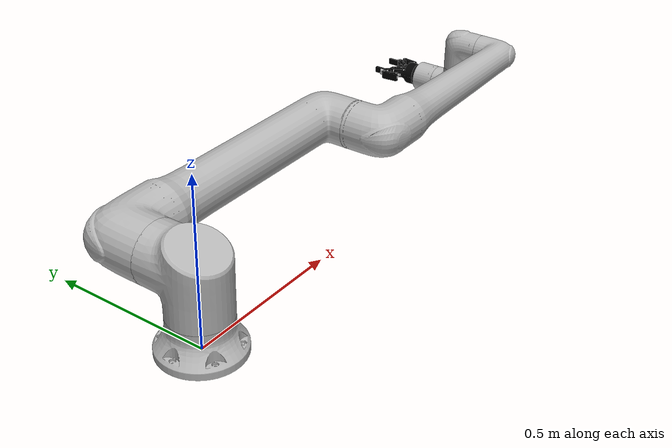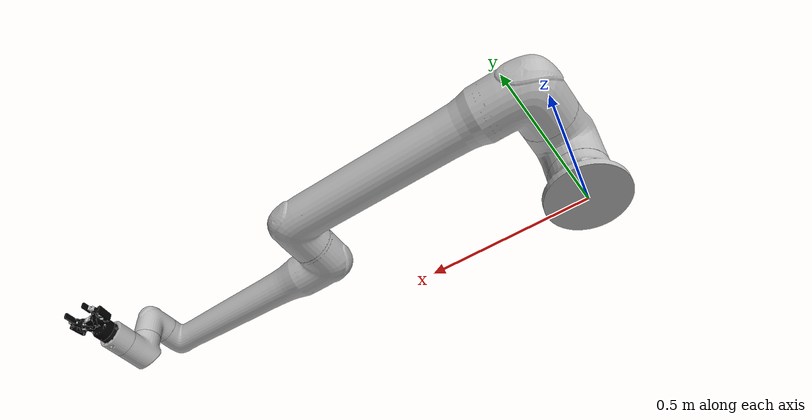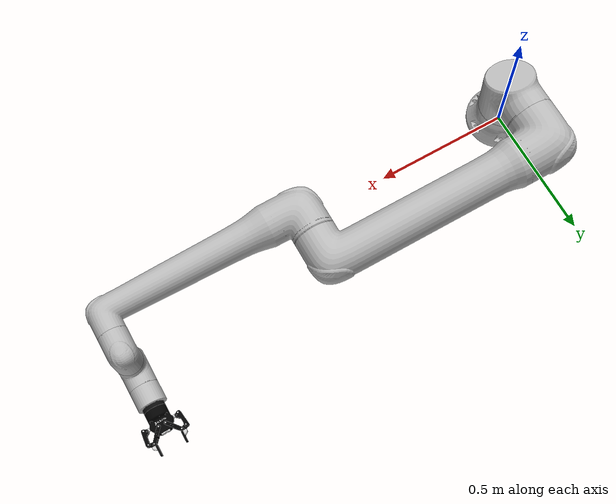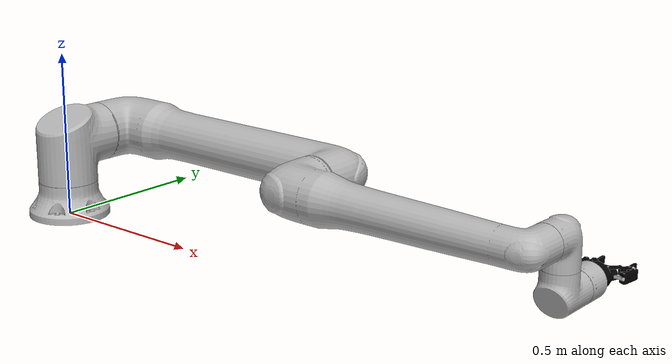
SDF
<sdf version='1.11'>
  <model name='devol'>
    <joint name='base_joint' type='fixed'>
      <pose relative_to='__model__'>0 0 0 0 0 0</pose>
      <parent>world</parent>
      <child>base_link</child>
    </joint>
    <link name='base_link'>
      <pose relative_to='base_joint'>0 0 0 0 0 0</pose>
      <inertial>
        <pose>0 0 0 0 0 0</pose>
        <mass>4</mass>
        <inertia>
          <ixx>0.0061063308907999998</ixx>
          <ixy>0</ixy>
          <ixz>0</ixz>
          <iyy>0.0061063308907999998</iyy>
          <iyz>0</iyz>
          <izz>0.01125</izz>
        </inertia>
      </inertial>
      <collision name='base_link_inertia_collision'>
        <pose>0 0 0 0 0 -2.4492935982947059e-16</pose>
        <geometry>
          <mesh>
            <scale>1 1 1</scale>
            <uri>/opt/ros/jazzy/share/ur_description/meshes/ur20/collision/base.stl</uri>
          </mesh>
        </geometry>
      </collision>
      <visual name='base_link_inertia_visual'>
        <pose>0 0 0 0 0 -2.4492935982947059e-16</pose>
        <geometry>
          <mesh>
            <scale>1 1 1</scale>
            <uri>/opt/ros/jazzy/share/ur_description/meshes/ur20/visual/base.dae</uri>
          </mesh>
        </geometry>
      </visual>
    </link>
    <joint name='shoulder_pan_joint' type='revolute'>
      <pose relative_to='base_link'>0 0 0.23630000000000001 0 0 3.1415926535897931</pose>
      <parent>base_link</parent>
      <child>shoulder_link</child>
      <axis>
        <xyz>0 0 1</xyz>
        <limit>
          <lower>-6.2831853071795862</lower>
          <upper>6.2831853071795862</upper>
          <effort>738</effort>
          <velocity>2.0943951023931948</velocity>
        </limit>
        <dynamics>
          <damping>0</damping>
          <friction>0</friction>
          <spring_reference>0</spring_reference>
          <spring_stiffness>0</spring_stiffness>
        </dynamics>
      </axis>
    </joint>
    <link name='shoulder_link'>
      <pose relative_to='shoulder_pan_joint'>0 0 0 0 0 0</pose>
      <inertial>
        <pose>0 -0.0061999999999999998 -0.060999999999999999 1.570796326794897 0 0</pose>
        <mass>16.343</mass>
        <inertia>
          <ixx>0.088660000000000003</ixx>
          <ixy>-0.00011</ixy>
          <ixz>-0.00011</ixz>
          <iyy>0.076319999999999999</iyy>
          <iyz>0.0071999999999999998</iyz>
          <izz>0.084180000000000005</izz>
        </inertia>
      </inertial>
      <collision name='shoulder_link_collision'>
        <pose>0 0 0 0 0 3.1415926535897931</pose>
        <geometry>
          <mesh>
            <scale>1 1 1</scale>
            <uri>/opt/ros/jazzy/share/ur_description/meshes/ur20/collision/shoulder.stl</uri>
          </mesh>
        </geometry>
      </collision>
      <visual name='shoulder_link_visual'>
        <pose>0 0 0 0 0 3.1415926535897931</pose>
        <geometry>
          <mesh>
            <scale>1 1 1</scale>
            <uri>/opt/ros/jazzy/share/ur_description/meshes/ur20/visual/shoulder.dae</uri>
          </mesh>
        </geometry>
      </visual>
    </link>
    <joint name='shoulder_lift_joint' type='revolute'>
      <pose relative_to='shoulder_link'>0 0 0 1.5707963270000003 0 0</pose>
      <parent>shoulder_link</parent>
      <child>upper_arm_link</child>
      <axis>
        <xyz>0 0 1</xyz>
        <limit>
          <lower>-6.2831853071795862</lower>
          <upper>6.2831853071795862</upper>
          <effort>738</effort>
          <velocity>2.0943951023931948</velocity>
        </limit>
        <dynamics>
          <damping>0</damping>
          <friction>0</friction>
          <spring_reference>0</spring_reference>
          <spring_stiffness>0</spring_stiffness>
        </dynamics>
      </axis>
    </joint>
    <link name='upper_arm_link'>
      <pose relative_to='shoulder_lift_joint'>0 0 0 0 0 0</pose>
      <inertial>
        <pose>-0.33939999999999998 0 0.20979999999999999 0 0 0</pose>
        <mass>29.632000000000001</mass>
        <inertia>
          <ixx>0.1467</ixx>
          <ixy>0.00019000000000000001</ixy>
          <ixz>-0.051630000000000002</ixz>
          <iyy>4.6658999999999997</iyy>
          <iyz>4.0000000000000003e-05</iyz>
          <izz>4.6348000000000003</izz>
        </inertia>
      </inertial>
      <collision name='upper_arm_link_collision'>
        <pose>0 0 0.26000000000000001 1.5707963267948959 5.5511151231257827e-17 -1.5707963267948959</pose>
        <geometry>
          <mesh>
            <scale>1 1 1</scale>
            <uri>/opt/ros/jazzy/share/ur_description/meshes/ur20/collision/upperarm.stl</uri>
          </mesh>
        </geometry>
      </collision>
      <visual name='upper_arm_link_visual'>
        <pose>0 0 0.26000000000000001 1.5707963267948959 5.5511151231257827e-17 -1.5707963267948959</pose>
        <geometry>
          <mesh>
            <scale>1 1 1</scale>
            <uri>/opt/ros/jazzy/share/ur_description/meshes/ur20/visual/upperarm.dae</uri>
          </mesh>
        </geometry>
      </visual>
    </link>
    <joint name='elbow_joint' type='revolute'>
      <pose relative_to='upper_arm_link'>-0.86199999999999999 0 0 0 0 0</pose>
      <parent>upper_arm_link</parent>
      <child>forearm_link</child>
      <axis>
        <xyz>0 0 1</xyz>
        <limit>
          <lower>-3.1415926535897931</lower>
          <upper>3.1415926535897931</upper>
          <effort>433</effort>
          <velocity>2.617993877991494</velocity>
        </limit>
        <dynamics>
          <damping>0</damping>
          <friction>0</friction>
          <spring_reference>0</spring_reference>
          <spring_stiffness>0</spring_stiffness>
        </dynamics>
      </axis>
    </joint>
    <link name='forearm_link'>
      <pose relative_to='elbow_joint'>0 0 0 0 0 0</pose>
      <inertial>
        <pose>-0.40529999999999999 0 0.060400000000000002 0 0 0</pose>
        <mass>7.8789999999999996</mass>
        <inertia>
          <ixx>0.026120000000000001</ixx>
          <ixy>-5.0000000000000002e-05</ixy>
          <ixz>-0.028979999999999999</ixz>
          <iyy>0.75763000000000003</iyy>
          <iyz>-1.0000000000000001e-05</iyz>
          <izz>0.75327</izz>
        </inertia>
      </inertial>
      <collision name='forearm_link_collision'>
        <pose>0 0 0.042999999999999997 1.5707963267948959 5.5511151231257827e-17 -1.5707963267948959</pose>
        <geometry>
          <mesh>
            <scale>1 1 1</scale>
            <uri>/opt/ros/jazzy/share/ur_description/meshes/ur20/collision/forearm.stl</uri>
          </mesh>
        </geometry>
      </collision>
      <visual name='forearm_link_visual'>
        <pose>0 0 0.042999999999999997 1.5707963267948959 5.5511151231257827e-17 -1.5707963267948959</pose>
        <geometry>
          <mesh>
            <scale>1 1 1</scale>
            <uri>/opt/ros/jazzy/share/ur_description/meshes/ur20/visual/forearm.dae</uri>
          </mesh>
        </geometry>
      </visual>
    </link>
    <joint name='wrist_1_joint' type='revolute'>
      <pose relative_to='forearm_link'>-0.72870000000000001 0 0.20100000000000001 0 0 0</pose>
      <parent>forearm_link</parent>
      <child>wrist_1_link</child>
      <axis>
        <xyz>0 0 1</xyz>
        <limit>
          <lower>-6.2831853071795862</lower>
          <upper>6.2831853071795862</upper>
          <effort>107</effort>
          <velocity>3.6651914291880918</velocity>
        </limit>
        <dynamics>
          <damping>0</damping>
          <friction>0</friction>
          <spring_reference>0</spring_reference>
          <spring_stiffness>0</spring_stiffness>
        </dynamics>
      </axis>
    </joint>
    <link name='wrist_1_link'>
      <pose relative_to='wrist_1_joint'>0 0 0 0 0 0</pose>
      <inertial>
        <pose>0 -0.039300000000000002 -0.0025999999999999999 1.570796326794897 0 0</pose>
        <mass>3.0539999999999998</mass>
        <inertia>
          <ixx>0.0055500000000000002</ixx>
          <ixy>-1.0000000000000001e-05</ixy>
          <ixz>-2.0000000000000002e-05</ixz>
          <iyy>0.0053699999999999998</iyy>
          <iyz>0.00036000000000000002</iyz>
          <izz>0.0040200000000000001</izz>
        </inertia>
      </inertial>
      <collision name='wrist_1_link_collision'>
        <pose>0 0 -0.077499999999999999 1.5707963267948959 0 0</pose>
        <geometry>
          <mesh>
            <scale>1 1 1</scale>
            <uri>/opt/ros/jazzy/share/ur_description/meshes/ur20/collision/wrist1.stl</uri>
          </mesh>
        </geometry>
      </collision>
      <visual name='wrist_1_link_visual'>
        <pose>0 0 -0.077499999999999999 1.5707963267948959 0 0</pose>
        <geometry>
          <mesh>
            <scale>1 1 1</scale>
            <uri>/opt/ros/jazzy/share/ur_description/meshes/ur20/visual/wrist1.dae</uri>
          </mesh>
        </geometry>
      </visual>
    </link>
    <joint name='wrist_2_joint' type='revolute'>
      <pose relative_to='wrist_1_link'>0 -0.1593 -3.2672976162492252e-11 1.5707963270000003 0 0</pose>
      <parent>wrist_1_link</parent>
      <child>wrist_2_link</child>
      <axis>
        <xyz>0 0 1</xyz>
        <limit>
          <lower>-6.2831853071795862</lower>
          <upper>6.2831853071795862</upper>
          <effort>107</effort>
          <velocity>3.6651914291880918</velocity>
        </limit>
        <dynamics>
          <damping>0</damping>
          <friction>0</friction>
          <spring_reference>0</spring_reference>
          <spring_stiffness>0</spring_stiffness>
        </dynamics>
      </axis>
    </joint>
    <link name='wrist_2_link'>
      <pose relative_to='wrist_2_joint'>0 0 0 0 0 0</pose>
      <inertial>
        <pose>0 0.037900000000000003 -0.0023999999999999998 -1.570796326794897 0 0</pose>
        <mass>3.1259999999999999</mass>
        <inertia>
          <ixx>0.0058599999999999998</ixx>
          <ixy>-1.0000000000000001e-05</ixy>
          <ixz>-2.0000000000000002e-05</ixz>
          <iyy>0.0057800000000000004</iyy>
          <iyz>-0.00036999999999999999</iyz>
          <izz>0.0042700000000000004</izz>
        </inertia>
      </inertial>
      <collision name='wrist_2_link_collision'>
        <pose>0 0 -0.074899999999999994 0 0 0</pose>
        <geometry>
          <mesh>
            <scale>1 1 1</scale>
            <uri>/opt/ros/jazzy/share/ur_description/meshes/ur20/collision/wrist2.stl</uri>
          </mesh>
        </geometry>
      </collision>
      <visual name='wrist_2_link_visual'>
        <pose>0 0 -0.074899999999999994 0 0 0</pose>
        <geometry>
          <mesh>
            <scale>1 1 1</scale>
            <uri>/opt/ros/jazzy/share/ur_description/meshes/ur20/visual/wrist2.dae</uri>
          </mesh>
        </geometry>
      </visual>
    </link>
    <joint name='wrist_3_joint' type='revolute'>
      <pose relative_to='wrist_2_link'>0 0.15429999999999999 -3.1647459019915603e-11 -1.5707963270000003 1.2246467991473527e-16 -1.224646799147353e-16</pose>
      <parent>wrist_2_link</parent>
      <child>wrist_3_link</child>
      <axis>
        <xyz>0 0 1</xyz>
        <limit>
          <lower>-6.2831853071795862</lower>
          <upper>6.2831853071795862</upper>
          <effort>107</effort>
          <velocity>3.6651914291880918</velocity>
        </limit>
        <dynamics>
          <damping>0</damping>
          <friction>0</friction>
          <spring_reference>0</spring_reference>
          <spring_stiffness>0</spring_stiffness>
        </dynamics>
      </axis>
    </joint>
    <link name='wrist_3_link'>
      <pose relative_to='wrist_3_joint'>0 0 0 0 0 0</pose>
      <inertial>
        <pose>-5.0921236482016421e-18 9.4304616181822113e-06 0.00100051112497917 0 0 0</pose>
        <mass>1.59920197</mass>
        <inertia>
          <ixx>0.0035182844259568349</ixx>
          <ixy>2.935999999998467e-08</ixy>
          <ixz>3.8397829451883528e-19</ixz>
          <iyy>0.0035631281452328549</iyy>
          <iyz>-9.6123265111148962e-07</iyz>
          <izz>0.001591627960723981</izz>
        </inertia>
      </inertial>
      <collision name='wrist_3_link_collision'>
        <pose>0 0 -0.070000000000000007 1.5707963267948959 0 0</pose>
        <geometry>
          <mesh>
            <scale>1 1 1</scale>
            <uri>/opt/ros/jazzy/share/ur_description/meshes/ur20/collision/wrist3.stl</uri>
          </mesh>
        </geometry>
      </collision>
      <collision name='wrist_3_link_fixed_joint_lump__ur_to_robotiq_link_collision_1'>
        <pose>0 0 0 -2.4651903288156619e-32 -2.2204460492503131e-16 2.2204460492503131e-16</pose>
        <geometry>
          <mesh>
            <scale>1 1 1</scale>
            <uri>/opt/ros/jazzy/share/robotiq_description/meshes/collision/ur_to_robotiq_adapter.stl</uri>
          </mesh>
        </geometry>
      </collision>
      <collision name='wrist_3_link_fixed_joint_lump__robotiq_85_base_link_collision_2'>
        <pose>-1.7347234759768071e-18 0 0.010999999999999999 -2.4651903288156619e-32 -2.2204460492503131e-16 2.2204460492503131e-16</pose>
        <geometry>
          <mesh>
            <scale>1 1 1</scale>
            <uri>file:///opt/ros/jazzy/share/robotiq_description/meshes/collision/robotiq_base.stl</uri>
          </mesh>
        </geometry>
      </collision>
      <visual name='wrist_3_link_visual'>
        <pose>0 0 -0.070000000000000007 1.5707963267948959 0 0</pose>
        <geometry>
          <mesh>
            <scale>1 1 1</scale>
            <uri>/opt/ros/jazzy/share/ur_description/meshes/ur20/visual/wrist3.dae</uri>
          </mesh>
        </geometry>
      </visual>
      <visual name='wrist_3_link_fixed_joint_lump__ur_to_robotiq_link_visual_1'>
        <pose>0 0 0 -2.4651903288156619e-32 -2.2204460492503131e-16 2.2204460492503131e-16</pose>
        <geometry>
          <mesh>
            <scale>1 1 1</scale>
            <uri>/opt/ros/jazzy/share/robotiq_description/meshes/visual/ur_to_robotiq_adapter.dae</uri>
          </mesh>
        </geometry>
      </visual>
      <visual name='wrist_3_link_fixed_joint_lump__robotiq_85_base_link_visual_2'>
        <pose>-1.7347234759768071e-18 0 0.010999999999999999 -2.4651903288156619e-32 -2.2204460492503131e-16 2.2204460492503131e-16</pose>
        <geometry>
          <mesh>
            <scale>1 1 1</scale>
            <uri>file:///opt/ros/jazzy/share/robotiq_description/meshes/visual/robotiq_base.dae</uri>
          </mesh>
        </geometry>
      </visual>
    </link>
    <joint name='robotiq_85_left_inner_knuckle_joint' type='revolute'>
      <pose relative_to='wrist_3_link'>0.01269999999999998 3.4694469519536142e-18 0.072420000000000012 -2.4651903288156619e-32 -2.2204460492503131e-16 2.2204460492503131e-16</pose>
      <parent>wrist_3_link</parent>
      <child>robotiq_85_left_inner_knuckle_link</child>
      <axis>
        <xyz>0 -1 0</xyz>
        <mimic joint='robotiq_85_left_knuckle_joint'>
          <multiplier>1</multiplier>
          <offset>0</offset>
          <reference>0</reference>
        </mimic>
        <limit>
          <lower>-inf</lower>
          <upper>inf</upper>
        </limit>
        <dynamics>
          <spring_reference>0</spring_reference>
          <spring_stiffness>0</spring_stiffness>
        </dynamics>
      </axis>
    </joint>
    <link name='robotiq_85_left_inner_knuckle_link'>
      <pose relative_to='robotiq_85_left_inner_knuckle_joint'>0 0 0 0 0 0</pose>
      <inertial>
        <pose>0.018976989999999999 0.00015001000000000001 0.02247101 0 0 0</pose>
        <mass>0.029693764479999999</mass>
        <inertia>
          <ixx>9.5713600000000001e-06</ixx>
          <ixy>0</ixy>
          <ixz>-3.9342399999999998e-06</ixz>
          <iyy>8.69056e-06</iyy>
          <iyz>0</iyz>
          <izz>8.1914400000000003e-06</izz>
        </inertia>
      </inertial>
      <collision name='robotiq_85_left_inner_knuckle_link_collision'>
        <pose>0 0 0 0 0 0</pose>
        <geometry>
          <mesh>
            <scale>1 1 1</scale>
            <uri>file:///opt/ros/jazzy/share/robotiq_description/meshes/collision/left_inner_knuckle.stl</uri>
          </mesh>
        </geometry>
      </collision>
      <visual name='robotiq_85_left_inner_knuckle_link_visual'>
        <pose>0 0 0 0 0 0</pose>
        <geometry>
          <mesh>
            <scale>1 1 1</scale>
            <uri>file:///opt/ros/jazzy/share/robotiq_description/meshes/visual/left_inner_knuckle.dae</uri>
          </mesh>
        </geometry>
      </visual>
    </link>
    <joint name='robotiq_85_left_knuckle_joint' type='revolute'>
      <pose relative_to='wrist_3_link'>0.030601139999999982 8.6736173798840355e-18 0.065904519999999994 -2.4651903288156619e-32 -2.2204460492503131e-16 2.2204460492503131e-16</pose>
      <parent>wrist_3_link</parent>
      <child>robotiq_85_left_knuckle_link</child>
      <axis>
        <xyz>0 -1 0</xyz>
        <limit>
          <lower>0</lower>
          <upper>0.80000000000000004</upper>
          <effort>50</effort>
          <velocity>0.5</velocity>
        </limit>
        <dynamics>
          <spring_reference>0</spring_reference>
          <spring_stiffness>0</spring_stiffness>
        </dynamics>
      </axis>
    </joint>
    <link name='robotiq_85_left_knuckle_link'>
      <pose relative_to='robotiq_85_left_knuckle_joint'>0 0 0 0 0 0</pose>
      <inertial>
        <pose>0.029386739357586979 -0.000550523351652724 0.01110696109436298 0 0 0</pose>
        <mass>0.056451499600000003</mass>
        <inertia>
          <ixx>1.672951427632284e-05</ixx>
          <ixy>2.376180881559496e-07</ixy>
          <ixz>-5.7573775998137648e-06</ixz>
          <iyy>2.2123373744517121e-05</iyy>
          <iyz>1.6103204181075421e-07</iyz>
          <izz>1.2901330613689229e-05</izz>
        </inertia>
      </inertial>
      <collision name='robotiq_85_left_knuckle_link_collision'>
        <pose>0 0 0 0 0 0</pose>
        <geometry>
          <mesh>
            <scale>1 1 1</scale>
            <uri>file:///opt/ros/jazzy/share/robotiq_description/meshes/collision/left_knuckle.stl</uri>
          </mesh>
        </geometry>
      </collision>
      <collision name='robotiq_85_left_knuckle_link_fixed_joint_lump__robotiq_85_left_finger_link_collision_1'>
        <pose>0.031526159999999998 0 -0.0037634700000000001 0 0 0</pose>
        <geometry>
          <mesh>
            <scale>1 1 1</scale>
            <uri>file:///opt/ros/jazzy/share/robotiq_description/meshes/collision/left_finger.stl</uri>
          </mesh>
        </geometry>
      </collision>
      <visual name='robotiq_85_left_knuckle_link_visual'>
        <pose>0 0 0 0 0 0</pose>
        <geometry>
          <mesh>
            <scale>1 1 1</scale>
            <uri>file:///opt/ros/jazzy/share/robotiq_description/meshes/visual/left_knuckle.dae</uri>
          </mesh>
        </geometry>
      </visual>
      <visual name='robotiq_85_left_knuckle_link_fixed_joint_lump__robotiq_85_left_finger_link_visual_1'>
        <pose>0.031526159999999998 0 -0.0037634700000000001 0 0 0</pose>
        <geometry>
          <mesh>
            <scale>1 1 1</scale>
            <uri>file:///opt/ros/jazzy/share/robotiq_description/meshes/visual/left_finger.dae</uri>
          </mesh>
        </geometry>
      </visual>
    </link>
    <joint name='robotiq_85_left_finger_tip_joint' type='revolute'>
      <pose relative_to='robotiq_85_left_knuckle_link'>0.037157500000000003 0 0.043421679999999997 0 0 0</pose>
      <parent>robotiq_85_left_knuckle_link</parent>
      <child>robotiq_85_left_finger_tip_link</child>
      <axis>
        <xyz>0 -1 0</xyz>
        <mimic joint='robotiq_85_left_knuckle_joint'>
          <multiplier>-1</multiplier>
          <offset>0</offset>
          <reference>0</reference>
        </mimic>
        <limit>
          <lower>-inf</lower>
          <upper>inf</upper>
        </limit>
        <dynamics>
          <spring_reference>0</spring_reference>
          <spring_stiffness>0</spring_stiffness>
        </dynamics>
      </axis>
    </joint>
    <link name='robotiq_85_left_finger_tip_link'>
      <pose relative_to='robotiq_85_left_finger_tip_joint'>0 0 0 0 0 0</pose>
      <inertial>
        <pose>-0.01456706 -0.00080000000000000004 0.016497009999999999 0 0 0</pose>
        <mass>0.04268588744</mass>
        <inertia>
          <ixx>1.0481519999999999e-05</ixx>
          <ixy>0</ixy>
          <ixz>3.5232e-06</ixz>
          <iyy>1.197888e-05</iyy>
          <iyz>0</iyz>
          <izz>4.2278399999999998e-06</izz>
        </inertia>
      </inertial>
      <collision name='robotiq_85_left_finger_tip_link_collision'>
        <pose>0 0 0 0 0 0</pose>
        <geometry>
          <mesh>
            <scale>1 1 1</scale>
            <uri>file:///opt/ros/jazzy/share/robotiq_description/meshes/collision/left_finger_tip.stl</uri>
          </mesh>
        </geometry>
      </collision>
      <visual name='robotiq_85_left_finger_tip_link_visual'>
        <pose>0 0 0 0 0 0</pose>
        <geometry>
          <mesh>
            <scale>1 1 1</scale>
            <uri>file:///opt/ros/jazzy/share/robotiq_description/meshes/visual/left_finger_tip.dae</uri>
          </mesh>
        </geometry>
      </visual>
    </link>
    <joint name='robotiq_85_right_inner_knuckle_joint' type='revolute'>
      <pose relative_to='wrist_3_link'>-0.012699999999999999 0 0.072419999999999984 -2.4651903288156619e-32 -2.2204460492503131e-16 2.2204460492503131e-16</pose>
      <parent>wrist_3_link</parent>
      <child>robotiq_85_right_inner_knuckle_link</child>
      <axis>
        <xyz>0 -1 0</xyz>
        <mimic joint='robotiq_85_left_knuckle_joint'>
          <multiplier>-1</multiplier>
          <offset>0</offset>
          <reference>0</reference>
        </mimic>
        <limit>
          <lower>-inf</lower>
          <upper>inf</upper>
        </limit>
        <dynamics>
          <spring_reference>0</spring_reference>
          <spring_stiffness>0</spring_stiffness>
        </dynamics>
      </axis>
    </joint>
    <link name='robotiq_85_right_inner_knuckle_link'>
      <pose relative_to='robotiq_85_right_inner_knuckle_joint'>0 0 0 0 0 0</pose>
      <inertial>
        <pose>-0.019268239999999999 5.0009999999999997e-05 0.02222178 0 0 0</pose>
        <mass>0.029693764479999999</mass>
        <inertia>
          <ixx>9.4245600000000001e-06</ixx>
          <ixy>0</ixy>
          <ixz>3.9635999999999996e-06</ixz>
          <iyy>8.69056e-06</iyy>
          <iyz>0</iyz>
          <izz>8.3382400000000003e-06</izz>
        </inertia>
      </inertial>
      <collision name='robotiq_85_right_inner_knuckle_link_collision'>
        <pose>0 0 0 0 0 0</pose>
        <geometry>
          <mesh>
            <scale>1 1 1</scale>
            <uri>file:///opt/ros/jazzy/share/robotiq_description/meshes/collision/right_inner_knuckle.stl</uri>
          </mesh>
        </geometry>
      </collision>
      <visual name='robotiq_85_right_inner_knuckle_link_visual'>
        <pose>0 0 0 0 0 0</pose>
        <geometry>
          <mesh>
            <scale>1 1 1</scale>
            <uri>file:///opt/ros/jazzy/share/robotiq_description/meshes/visual/right_inner_knuckle.dae</uri>
          </mesh>
        </geometry>
      </visual>
    </link>
    <joint name='robotiq_85_right_knuckle_joint' type='revolute'>
      <pose relative_to='wrist_3_link'>-0.03060114000000002 -1.387778780781446e-17 0.065904519999999994 -2.4651903288156619e-32 -2.2204460492503131e-16 2.2204460492503131e-16</pose>
      <parent>wrist_3_link</parent>
      <child>robotiq_85_right_knuckle_link</child>
      <axis>
        <xyz>0 -1 0</xyz>
        <mimic joint='robotiq_85_left_knuckle_joint'>
          <multiplier>-1</multiplier>
          <offset>0</offset>
          <reference>0</reference>
        </mimic>
        <limit>
          <lower>-0.80000000000000004</lower>
          <upper>0</upper>
          <effort>50</effort>
          <velocity>0.5</velocity>
        </limit>
        <dynamics>
          <spring_reference>0</spring_reference>
          <spring_stiffness>0</spring_stiffness>
        </dynamics>
      </axis>
    </joint>
    <link name='robotiq_85_right_knuckle_link'>
      <pose relative_to='robotiq_85_right_knuckle_joint'>0 0 0 0 0 0</pose>
      <inertial>
        <pose>-0.029386739357586979 4.4887161538121481e-05 0.01110696109436298 0 0 0</pose>
        <mass>0.056451499600000003</mass>
        <inertia>
          <ixx>1.67196201740057e-05</ixx>
          <ixy>-4.9109219643319929e-08</ixy>
          <ixz>5.7573775998137648e-06</ixz>
          <iyy>2.2123373744517121e-05</iyy>
          <iyz>3.3280959258061408e-08</iyz>
          <izz>1.289143651137209e-05</izz>
        </inertia>
      </inertial>
      <collision name='robotiq_85_right_knuckle_link_collision'>
        <pose>0 0 0 0 0 0</pose>
        <geometry>
          <mesh>
            <scale>1 1 1</scale>
            <uri>file:///opt/ros/jazzy/share/robotiq_description/meshes/collision/right_knuckle.stl</uri>
          </mesh>
        </geometry>
      </collision>
      <collision name='robotiq_85_right_knuckle_link_fixed_joint_lump__robotiq_85_right_finger_link_collision_1'>
        <pose>-0.031526159999999998 0 -0.0037634700000000001 0 0 0</pose>
        <geometry>
          <mesh>
            <scale>1 1 1</scale>
            <uri>file:///opt/ros/jazzy/share/robotiq_description/meshes/collision/right_finger.stl</uri>
          </mesh>
        </geometry>
      </collision>
      <visual name='robotiq_85_right_knuckle_link_visual'>
        <pose>0 0 0 0 0 0</pose>
        <geometry>
          <mesh>
            <scale>1 1 1</scale>
            <uri>file:///opt/ros/jazzy/share/robotiq_description/meshes/visual/right_knuckle.dae</uri>
          </mesh>
        </geometry>
      </visual>
      <visual name='robotiq_85_right_knuckle_link_fixed_joint_lump__robotiq_85_right_finger_link_visual_1'>
        <pose>-0.031526159999999998 0 -0.0037634700000000001 0 0 0</pose>
        <geometry>
          <mesh>
            <scale>1 1 1</scale>
            <uri>file:///opt/ros/jazzy/share/robotiq_description/meshes/visual/right_finger.dae</uri>
          </mesh>
        </geometry>
      </visual>
    </link>
    <joint name='robotiq_85_right_finger_tip_joint' type='revolute'>
      <pose relative_to='robotiq_85_right_knuckle_link'>-0.037157500000000003 0 0.043421679999999997 0 0 0</pose>
      <parent>robotiq_85_right_knuckle_link</parent>
      <child>robotiq_85_right_finger_tip_link</child>
      <axis>
        <xyz>0 -1 0</xyz>
        <mimic joint='robotiq_85_left_knuckle_joint'>
          <multiplier>1</multiplier>
          <offset>0</offset>
          <reference>0</reference>
        </mimic>
        <limit>
          <lower>-inf</lower>
          <upper>inf</upper>
        </limit>
        <dynamics>
          <spring_reference>0</spring_reference>
          <spring_stiffness>0</spring_stiffness>
        </dynamics>
      </axis>
    </joint>
    <link name='robotiq_85_right_finger_tip_link'>
      <pose relative_to='robotiq_85_right_finger_tip_joint'>0 0 0 0 0 0</pose>
      <inertial>
        <pose>0.01456706 5.0000000000000002e-05 0.016497009999999999 0 0 0</pose>
        <mass>0.04268588744</mass>
        <inertia>
          <ixx>1.0481519999999999e-05</ixx>
          <ixy>0</ixy>
          <ixz>-3.5232e-06</ixz>
          <iyy>1.197888e-05</iyy>
          <iyz>0</iyz>
          <izz>4.2278399999999998e-06</izz>
        </inertia>
      </inertial>
      <collision name='robotiq_85_right_finger_tip_link_collision'>
        <pose>0 0 0 0 0 0</pose>
        <geometry>
          <mesh>
            <scale>1 1 1</scale>
            <uri>file:///opt/ros/jazzy/share/robotiq_description/meshes/collision/right_finger_tip.stl</uri>
          </mesh>
        </geometry>
      </collision>
      <visual name='robotiq_85_right_finger_tip_link_visual'>
        <pose>0 0 0 0 0 0</pose>
        <geometry>
          <mesh>
            <scale>1 1 1</scale>
            <uri>file:///opt/ros/jazzy/share/robotiq_description/meshes/visual/right_finger_tip.dae</uri>
          </mesh>
        </geometry>
      </visual>
    </link>
    <frame name='base_link-base_fixed_joint' attached_to='base_link'>
      <pose>0 0 0 0 0 3.1415926535897931</pose>
    </frame>
    <frame name='base' attached_to='base_link-base_fixed_joint'>
      <pose>0 0 0 0 0 0</pose>
    </frame>
    <frame name='base_link-base_link_inertia' attached_to='base_link'>
      <pose>0 0 0 0 0 3.1415926535897931</pose>
    </frame>
    <frame name='base_link_inertia' attached_to='base_link-base_link_inertia'>
      <pose>0 0 0 0 0 0</pose>
    </frame>
    <frame name='robotiq_85_base_joint' attached_to='gripper_mount_link'>
      <pose>0 0 0 0 0 0</pose>
    </frame>
    <frame name='robotiq_85_base_link' attached_to='robotiq_85_base_joint'>
      <pose>0 0 0 0 0 0</pose>
    </frame>
    <frame name='robotiq_85_left_finger_joint' attached_to='robotiq_85_left_knuckle_link'>
      <pose>0.031526159999999998 0 -0.0037634700000000001 0 0 0</pose>
    </frame>
    <frame name='robotiq_85_left_finger_link' attached_to='robotiq_85_left_finger_joint'>
      <pose>0 0 0 0 0 0</pose>
    </frame>
    <frame name='robotiq_85_right_finger_joint' attached_to='robotiq_85_right_knuckle_link'>
      <pose>-0.031526159999999998 0 -0.0037634700000000001 0 0 0</pose>
    </frame>
    <frame name='robotiq_85_right_finger_link' attached_to='robotiq_85_right_finger_joint'>
      <pose>0 0 0 0 0 0</pose>
    </frame>
    <frame name='gripper_side_joint' attached_to='ur_to_robotiq_link'>
      <pose>0 0 0.010999999999999999 0 0 0</pose>
    </frame>
    <frame name='gripper_mount_link' attached_to='gripper_side_joint'>
      <pose>0 0 0 0 0 0</pose>
    </frame>
    <frame name='ur_to_robotiq_joint' attached_to='tool0'>
      <pose>0 0 0 0 0 0</pose>
    </frame>
    <frame name='ur_to_robotiq_link' attached_to='ur_to_robotiq_joint'>
      <pose>0 0 0 0 0 0</pose>
    </frame>
    <frame name='flange-tool0' attached_to='flange'>
      <pose>0 0 0 1.5707963267948959 -5.5511151231257827e-17 1.5707963267948959</pose>
    </frame>
    <frame name='tool0' attached_to='flange-tool0'>
      <pose>0 0 0 0 0 0</pose>
    </frame>
    <frame name='wrist_3-flange' attached_to='wrist_3_link'>
      <pose>0 0 0 -1.5707963267948957 -1.5707963267948966 0</pose>
    </frame>
    <frame name='flange' attached_to='wrist_3-flange'>
      <pose>0 0 0 0 0 0</pose>
    </frame>
    <frame name='wrist_3_link-ft_frame' attached_to='wrist_3_link'>
      <pose>0 0 0 3.1415926535897931 0 0</pose>
    </frame>
    <frame name='ft_frame' attached_to='wrist_3_link-ft_frame'>
      <pose>0 0 0 0 0 0</pose>
    </frame>
  </model>
</sdf>
